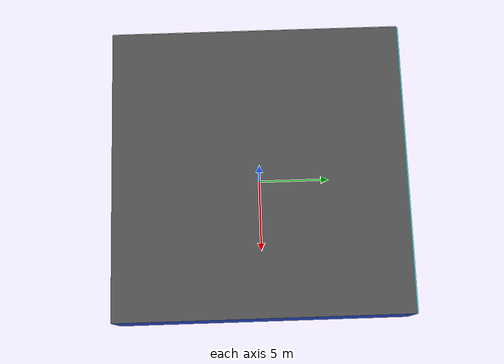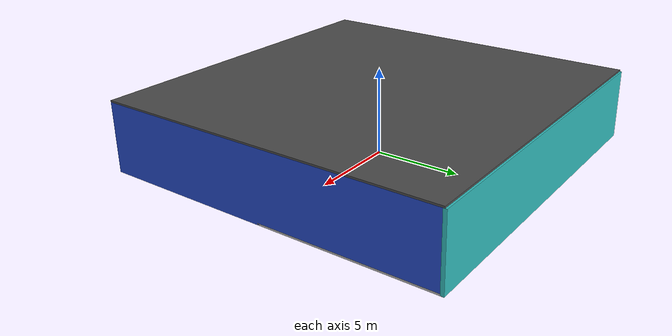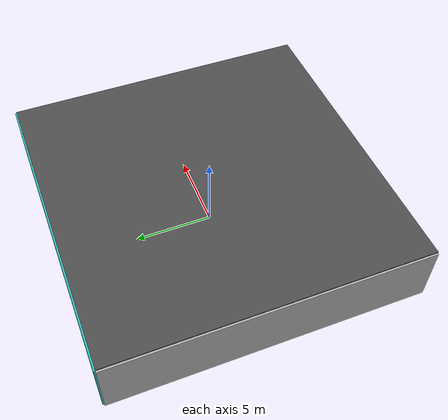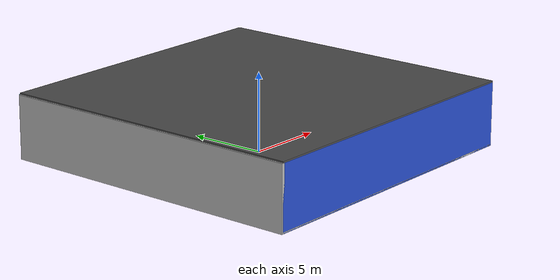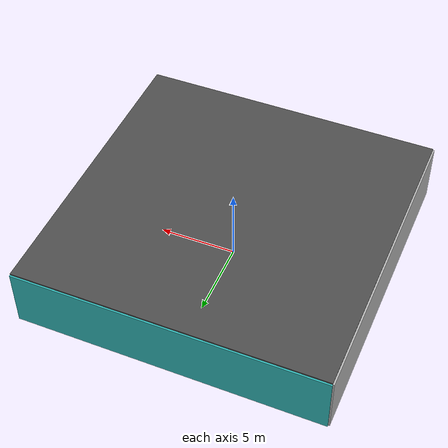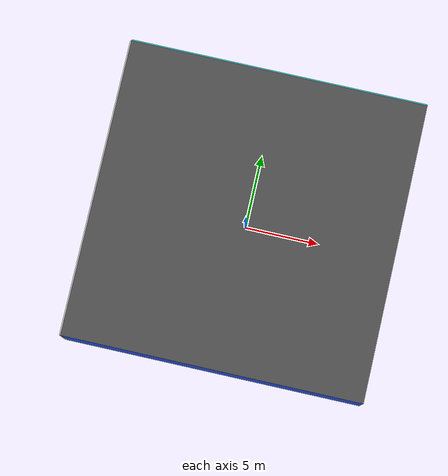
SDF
<sdf version="1.4">
 <world name="default">
  <physics type="ode">
   <max_step_size>0.001</max_step_size>
   <real_time_factor>1</real_time_factor>
   <real_time_update_rate>1000</real_time_update_rate>
   <gravity>0 0 -9.8</gravity>
  </physics>
  <scene><ambient>0.4 0.4 0.4 1</ambient><background>0.7 0.7 0.7 1</background><shadows>1</shadows></scene>
  <model name="Surrounding">
   <static>1</static>
   <link name="Ceiling">
    <collision name="Ceiling_Collision"><geometry><box><size>20 20 0.1</size></box></geometry></collision>
    <visual name="Ceiling_Visual">
     <geometry><box><size>20 20 0.1</size></box></geometry>
     <material>
      <script><uri>file://media/materials/scripts/gazebo.material</uri><name>Gazebo/Road</name></script>
     </material>
    </visual>
    <pose>0 0 4.05 0 0 0</pose>
   </link>
   <link name="Wall_South">
    <collision name="Wall_South_Collision">
     <geometry><box><size>20 0 4</size></box></geometry>
     <pose>0 0 2 0 -0 0</pose>
    </collision>
    <visual name="Wall_South_Visual">
     <pose>0 0 2 0 -0 0</pose>
     <geometry><box><size>20 0 4</size></box></geometry>
     <material>
      <script><uri>file://media/materials/scripts/gazebo.material</uri><name>Gazebo/BlueLaser</name></script>
     </material>
    </visual>
    <velocity_decay><linear>0</linear><angular>0</angular></velocity_decay>
    <pose>0 -10 0 0 -0 0</pose>
   </link>
   <link name="Wall_East">
    <collision name="Wall_21_Collision">
     <geometry><box><size>20 0 4</size></box></geometry>
     <pose>0 0 2 0 -0 0</pose>
    </collision>
    <visual name="Wall_21_Visual">
     <pose>0 0 2 0 -0 0</pose>
     <geometry><box><size>20 0 4</size></box></geometry>
     <material>
      <script><uri>file://media/materials/scripts/gazebo.material</uri><name>Gazebo/BlueGlow</name></script>
     </material>
    </visual>
    <velocity_decay><linear>0</linear><angular>0</angular></velocity_decay>
    <pose>10 0 0 0 -0 1.5708</pose>
   </link>
   <link name="Wall_North">
    <collision name="Wall_22_Collision">
     <geometry><box><size>20 0.2 4</size></box></geometry>
     <pose>0 0 2 0 -0 0</pose>
    </collision>
    <visual name="Wall_22_Visual">
     <pose>0 0 2 0 -0 0</pose>
     <geometry><box><size>20 0.2 4</size></box></geometry>
     <material>
      <script><uri>file://media/materials/scripts/gazebo.material</uri><name>Gazebo/Turquoise</name></script>
     </material>
    </visual>
    <velocity_decay><linear>0</linear><angular>0</angular></velocity_decay>
    <pose>0 10 0 0 -0 0</pose>
   </link>
   <link name="Wall_West">
    <collision name="Wall_23_Collision">
     <geometry><box><size>20 0.2 4</size></box></geometry>
     <pose>0 0 2 0 -0 0</pose>
    </collision>
    <visual name="Wall_23_Visual">
     <pose>0 0 2 0 -0 0</pose>
     <geometry><box><size>20 0.2 4</size></box></geometry>
     <material>
      <script><uri>file://media/materials/scripts/gazebo.material</uri><name>Gazebo/JointAnchor</name></script>
     </material>
    </visual>
    <velocity_decay><linear>0</linear><angular>0</angular></velocity_decay>
    <pose>-10 0 0 0 0 -1.5708</pose>
   </link>
   <link name="Ground_link">
    <collision name="collision">
     <pose>0 0 .05 0 -0 0</pose>
     <geometry><box><size>20 20 0.1</size></box></geometry>
    </collision>
    <visual name="visual">
     <pose>0 0 .05 0 -0 0</pose>
     <geometry><box><size>20 20 0.1</size></box></geometry>
     <material>
      <script><uri>file://media/materials/scripts/gazebo.material</uri><name>Gazebo/Pioneer2Body</name></script>
     </material>
    </visual>
   </link>
   <static>1</static>
  </model>
  <spherical_coordinates>
   <surface_model>EARTH_WGS84</surface_model>
   <latitude_deg>0</latitude_deg>
   <longitude_deg>0</longitude_deg>
   <elevation>0</elevation>
   <heading_deg>0</heading_deg>
  </spherical_coordinates>
  <light name="lightball_0" type="diffuse">
   <diffuse>0.8 0.8 0.8 1</diffuse>
   <specular>0.2 0.2 0.2 1</specular>
   <attenuation>
    <range>100</range>
    <constant>0.7</constant>
    <linear>0.01</linear>
    <quadratic>0.001</quadratic>
   </attenuation>
   <direction>-0.5 0.1 -0.9</direction>
   <pose>-3.6783052173 7.73405490906 2.11360411949 0 0 0</pose>
  </light>
  <light name="lightball_1" type="diffuse">
   <diffuse>0.8 0.8 0.8 1</diffuse>
   <specular>0.2 0.2 0.2 1</specular>
   <attenuation>
    <range>100</range>
    <constant>0.7</constant>
    <linear>0.01</linear>
    <quadratic>0.001</quadratic>
   </attenuation>
   <direction>-0.5 0.1 -0.9</direction>
   <pose>-0.297386330592 -8.82956336027 3.08697645273 0 0 0</pose>
  </light>
  <light name="lightball_2" type="diffuse">
   <diffuse>0.8 0.8 0.8 1</diffuse>
   <specular>0.2 0.2 0.2 1</specular>
   <attenuation>
    <range>100</range>
    <constant>0.7</constant>
    <linear>0.01</linear>
    <quadratic>0.001</quadratic>
   </attenuation>
   <direction>-0.5 0.1 -0.9</direction>
   <pose>-3.93971970772 3.19965526934 3.86740302921 0 0 0</pose>
  </light>
  <light name="lightball_3" type="diffuse">
   <diffuse>0.8 0.8 0.8 1</diffuse>
   <specular>0.2 0.2 0.2 1</specular>
   <attenuation>
    <range>100</range>
    <constant>0.7</constant>
    <linear>0.01</linear>
    <quadratic>0.001</quadratic>
   </attenuation>
   <direction>-0.5 0.1 -0.9</direction>
   <pose>-1.13211834217 -5.63867406257 1.90162470852 0 0 0</pose>
  </light>
  <light name="lightball_4" type="diffuse">
   <diffuse>0.8 0.8 0.8 1</diffuse>
   <specular>0.2 0.2 0.2 1</specular>
   <attenuation>
    <range>100</range>
    <constant>0.7</constant>
    <linear>0.01</linear>
    <quadratic>0.001</quadratic>
   </attenuation>
   <direction>-0.5 0.1 -0.9</direction>
   <pose>4.37717904358 -3.85284158745 3.60470936943 0 0 0</pose>
  </light>
  <include>
   <uri>model://construction_cone</uri>
   <pose>-7.07738614251 4.49045503816 0 0 0 0.122413141658</pose>
  </include>
  <include><uri>model://table</uri><pose>-3.99422615199 8.18280466856 0 0 0 0.841905555411</pose></include>
  <include>
   <uri>model://construction_cone</uri>
   <pose>7.94374568421 -0.702816548466 0 0 0 1.24618376521</pose>
  </include>
 </world>
</sdf>

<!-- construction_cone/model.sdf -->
<sdf version="1.5">
  <model name="Construction Cone">
    <link name="link">
      <collision name="collision">
        <geometry>
          <mesh>
            <scale>10 10 10</scale>
            <uri>file://isr-testbed/construction_cone/meshes/construction_cone.dae</uri>
          </mesh>
        </geometry>
      </collision>
      <visual name="visual">
        <geometry>
          <mesh>
            <scale>10 10 10</scale>
            <uri>file://isr-testbed/construction_cone/meshes/construction_cone.dae</uri>
          </mesh>
        </geometry>
      </visual>
    </link>
  </model>
</sdf>

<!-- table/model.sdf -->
<sdf version="1.5">
  <model name="table">
    <static>true</static>
    <link name="link">
      <collision name="surface">
        <pose>0 0 1.0 0 0 0</pose>
        <geometry>
          <box>
            <size>1.5 0.8 0.03</size>
          </box>
        </geometry>
        <surface>
          <friction>
            <ode>
              <mu>0.6</mu>
              <mu2>0.6</mu2>
            </ode>
          </friction>
        </surface>
      </collision>
      <visual name="visual1">
        <pose>0 0 1.0 0 0 0</pose>
        <geometry>
          <box>
            <size>1.5 0.8 0.03</size>
          </box>
        </geometry>
        <material>
          <script>
            <uri>model://media/materials/scripts/gazebo.material</uri>
            <name>Gazebo/Wood</name>
          </script>
        </material>
      </visual>
      <collision name="front_left_leg">
        <pose>0.68 0.38 0.5 0 0 0</pose>
        <geometry>
          <cylinder>
            <radius>0.02</radius>
            <length>1.0</length>
          </cylinder>
        </geometry>
      </collision>
      <visual name="front_left_leg">
        <pose>0.68 0.38 0.5 0 0 0</pose>
        <geometry>
          <cylinder>
            <radius>0.02</radius>
            <length>1.0</length>
          </cylinder>
        </geometry>
        <material>
          <script>
            <uri>model://media/materials/scripts/gazebo.material</uri>
            <name>Gazebo/Grey</name>
          </script>
        </material>
      </visual>
      <collision name="front_right_leg">
        <pose>0.68 -0.38 0.5 0 0 0</pose>
        <geometry>
          <cylinder>
            <radius>0.02</radius>
            <length>1.0</length>
          </cylinder>
        </geometry>
      </collision>
      <visual name="front_right_leg">
        <pose>0.68 -0.38 0.5 0 0 0</pose>
        <geometry>
          <cylinder>
            <radius>0.02</radius>
            <length>1.0</length>
          </cylinder>
        </geometry>
        <material>
          <script>
            <uri>model://media/materials/scripts/gazebo.material</uri>
            <name>Gazebo/Grey</name>
          </script>
        </material>
      </visual>
      <collision name="back_right_leg">
        <pose>-0.68 -0.38 0.5 0 0 0</pose>
        <geometry>
          <cylinder>
            <radius>0.02</radius>
            <length>1.0</length>
          </cylinder>
        </geometry>
      </collision>
      <visual name="back_right_leg">
        <pose>-0.68 -0.38 0.5 0 0 0</pose>
        <geometry>
          <cylinder>
            <radius>0.02</radius>
            <length>1.0</length>
          </cylinder>
        </geometry>
        <material>
          <script>
            <uri>model://media/materials/scripts/gazebo.material</uri>
            <name>Gazebo/Grey</name>
          </script>
        </material>
      </visual>
      <collision name="back_left_leg">
        <pose>-0.68 0.38 0.5 0 0 0</pose>
        <geometry>
          <cylinder>
            <radius>0.02</radius>
            <length>1.0</length>
          </cylinder>
        </geometry>
      </collision>
      <visual name="back_left_leg">
        <pose>-0.68 0.38 0.5 0 0 0</pose>
        <geometry>
          <cylinder>
            <radius>0.02</radius>
            <length>1.0</length>
          </cylinder>
        </geometry>
        <material>
          <script>
            <uri>model://media/materials/scripts/gazebo.material</uri>
            <name>Gazebo/Grey</name>
          </script>
        </material>
      </visual>
    </link>
  </model>
</sdf>
